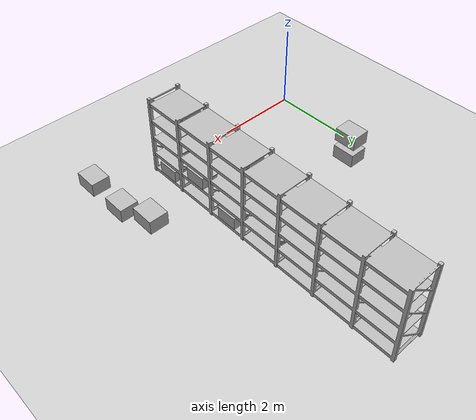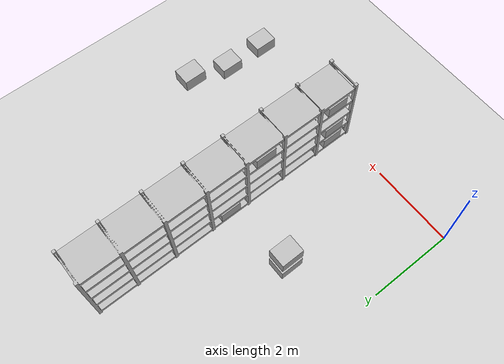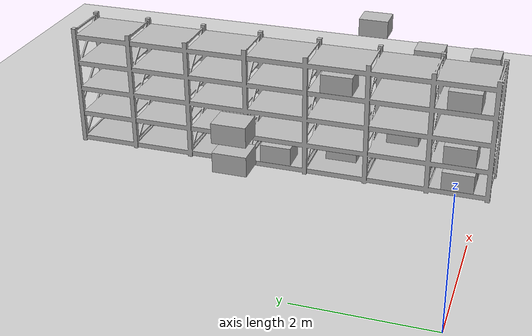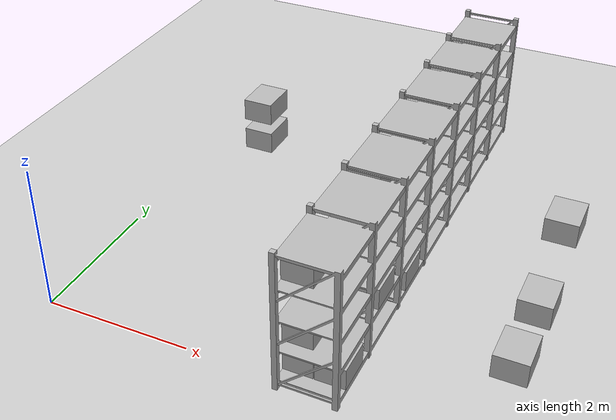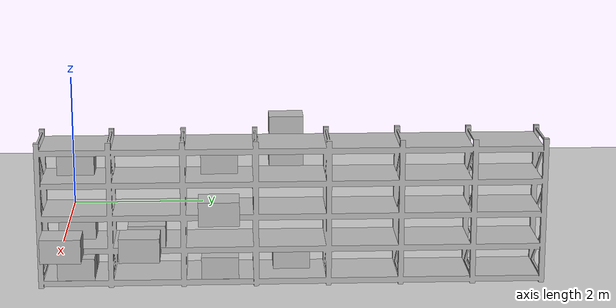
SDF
<sdf version="1.6">
 <world name="default">
  <model name="ground_plane">
   <static>1</static>
   <link name="link">
    <collision name="collision">
     <geometry><plane><normal>0 0 1</normal><size>100 100</size></plane></geometry>
     <surface><friction><ode><mu>100</mu><mu2>50</mu2></ode></friction></surface>
    </collision>
    <visual name="visual">
     <cast_shadows>0</cast_shadows>
     <geometry><plane><normal>0 0 1</normal><size>100 100</size></plane></geometry>
     <material>
      <script><uri>file://media/materials/scripts/gazebo.material</uri><name>Gazebo/Grey</name></script>
     </material>
    </visual>
   </link>
  </model>
  <model name="box_A_040">
   <pose>1.4649 3.2523 1.152 0 0 0</pose>
   <link name="link">
    <inertial>
     <mass>2.0</mass>
     <inertia><ixx>0.05667</ixx><iyy>0.04167</iyy><izz>0.06833</izz><ixy>0</ixy><ixz>0</ixz><iyz>0</iyz></inertia>
    </inertial>
    <collision name="collision">
     <geometry><box><size>0.4 0.5 0.3</size></box></geometry>
     <surface><friction><ode><mu>1.0</mu><mu2>1.0</mu2></ode></friction></surface>
    </collision>
    <visual name="visual">
     <cast_shadows>0</cast_shadows>
     <geometry><box><size>0.4 0.5 0.3</size></box></geometry>
     <material>
      <script>
       <uri>model://labeled_boxes/materials/scripts</uri>
       <uri>model://labeled_boxes/materials/textures</uri>
       <name>LabeledBox/A-040</name>
      </script>
     </material>
    </visual>
   </link>
  </model>
  <model name="box_A_041">
   <pose>1.4649 3.2523 1.602 0 0 0</pose>
   <link name="link">
    <inertial>
     <mass>2.0</mass>
     <inertia><ixx>0.05667</ixx><iyy>0.04167</iyy><izz>0.06833</izz><ixy>0</ixy><ixz>0</ixz><iyz>0</iyz></inertia>
    </inertial>
    <collision name="collision">
     <geometry><box><size>0.4 0.5 0.3</size></box></geometry>
     <surface><friction><ode><mu>1.0</mu><mu2>1.0</mu2></ode></friction></surface>
    </collision>
    <visual name="visual">
     <cast_shadows>0</cast_shadows>
     <geometry><box><size>0.4 0.5 0.3</size></box></geometry>
     <material>
      <script>
       <uri>model://labeled_boxes/materials/scripts</uri>
       <uri>model://labeled_boxes/materials/textures</uri>
       <name>LabeledBox/A-041</name>
      </script>
     </material>
    </visual>
   </link>
  </model>
  <include>
   <name>rack_A3_1</name>
   <uri>model://warehouse_rack_5lvl_7bay</uri>
   <pose>3.6599 3.2523 0 0 0 0</pose>
  </include>
  <model name="box_A_064">
   <pose>3.4549 0.35551 0.252 0 0 0</pose>
   <link name="link">
    <inertial>
     <mass>2.0</mass>
     <inertia><ixx>0.05667</ixx><iyy>0.04167</iyy><izz>0.06833</izz><ixy>0</ixy><ixz>0</ixz><iyz>0</iyz></inertia>
    </inertial>
    <collision name="collision">
     <geometry><box><size>0.4 0.5 0.3</size></box></geometry>
     <surface><friction><ode><mu>1.0</mu><mu2>1.0</mu2></ode></friction></surface>
    </collision>
    <visual name="visual">
     <cast_shadows>0</cast_shadows>
     <geometry><box><size>0.4 0.5 0.3</size></box></geometry>
     <material>
      <script>
       <uri>model://labeled_boxes/materials/scripts</uri>
       <uri>model://labeled_boxes/materials/textures</uri>
       <name>LabeledBox/A-064</name>
      </script>
     </material>
    </visual>
   </link>
  </model>
  <model name="box_A_065">
   <pose>3.8649 0.35551 0.252 0 0 0</pose>
   <link name="link">
    <inertial>
     <mass>2.0</mass>
     <inertia><ixx>0.05667</ixx><iyy>0.04167</iyy><izz>0.06833</izz><ixy>0</ixy><ixz>0</ixz><iyz>0</iyz></inertia>
    </inertial>
    <collision name="collision">
     <geometry><box><size>0.4 0.5 0.3</size></box></geometry>
     <surface><friction><ode><mu>1.0</mu><mu2>1.0</mu2></ode></friction></surface>
    </collision>
    <visual name="visual">
     <cast_shadows>0</cast_shadows>
     <geometry><box><size>0.4 0.5 0.3</size></box></geometry>
     <material>
      <script>
       <uri>model://labeled_boxes/materials/scripts</uri>
       <uri>model://labeled_boxes/materials/textures</uri>
       <name>LabeledBox/A-065</name>
      </script>
     </material>
    </visual>
   </link>
  </model>
  <model name="box_A_066">
   <pose>3.4549 0.35551 0.702 0 0 0</pose>
   <link name="link">
    <inertial>
     <mass>2.0</mass>
     <inertia><ixx>0.05667</ixx><iyy>0.04167</iyy><izz>0.06833</izz><ixy>0</ixy><ixz>0</ixz><iyz>0</iyz></inertia>
    </inertial>
    <collision name="collision">
     <geometry><box><size>0.4 0.5 0.3</size></box></geometry>
     <surface><friction><ode><mu>1.0</mu><mu2>1.0</mu2></ode></friction></surface>
    </collision>
    <visual name="visual">
     <cast_shadows>0</cast_shadows>
     <geometry><box><size>0.4 0.5 0.3</size></box></geometry>
     <material>
      <script>
       <uri>model://labeled_boxes/materials/scripts</uri>
       <uri>model://labeled_boxes/materials/textures</uri>
       <name>LabeledBox/A-066</name>
      </script>
     </material>
    </visual>
   </link>
  </model>
  <model name="box_A_067">
   <pose>3.4549 0.35551 1.602 0 0 0</pose>
   <link name="link">
    <inertial>
     <mass>2.0</mass>
     <inertia><ixx>0.05667</ixx><iyy>0.04167</iyy><izz>0.06833</izz><ixy>0</ixy><ixz>0</ixz><iyz>0</iyz></inertia>
    </inertial>
    <collision name="collision">
     <geometry><box><size>0.4 0.5 0.3</size></box></geometry>
     <surface><friction><ode><mu>1.0</mu><mu2>1.0</mu2></ode></friction></surface>
    </collision>
    <visual name="visual">
     <cast_shadows>0</cast_shadows>
     <geometry><box><size>0.4 0.5 0.3</size></box></geometry>
     <material>
      <script>
       <uri>model://labeled_boxes/materials/scripts</uri>
       <uri>model://labeled_boxes/materials/textures</uri>
       <name>LabeledBox/A-067</name>
      </script>
     </material>
    </visual>
   </link>
  </model>
  <model name="box_A_068">
   <pose>3.8649 1.3094 0.702 0 0 0</pose>
   <link name="link">
    <inertial>
     <mass>2.0</mass>
     <inertia><ixx>0.05667</ixx><iyy>0.04167</iyy><izz>0.06833</izz><ixy>0</ixy><ixz>0</ixz><iyz>0</iyz></inertia>
    </inertial>
    <collision name="collision">
     <geometry><box><size>0.4 0.5 0.3</size></box></geometry>
     <surface><friction><ode><mu>1.0</mu><mu2>1.0</mu2></ode></friction></surface>
    </collision>
    <visual name="visual">
     <cast_shadows>0</cast_shadows>
     <geometry><box><size>0.4 0.5 0.3</size></box></geometry>
     <material>
      <script>
       <uri>model://labeled_boxes/materials/scripts</uri>
       <uri>model://labeled_boxes/materials/textures</uri>
       <name>LabeledBox/A-068</name>
      </script>
     </material>
    </visual>
   </link>
  </model>
  <model name="box_A_069">
   <pose>3.8649 2.2809 0.252 0 0 0</pose>
   <link name="link">
    <inertial>
     <mass>2.0</mass>
     <inertia><ixx>0.05667</ixx><iyy>0.04167</iyy><izz>0.06833</izz><ixy>0</ixy><ixz>0</ixz><iyz>0</iyz></inertia>
    </inertial>
    <collision name="collision">
     <geometry><box><size>0.4 0.5 0.3</size></box></geometry>
     <surface><friction><ode><mu>1.0</mu><mu2>1.0</mu2></ode></friction></surface>
    </collision>
    <visual name="visual">
     <cast_shadows>0</cast_shadows>
     <geometry><box><size>0.4 0.5 0.3</size></box></geometry>
     <material>
      <script>
       <uri>model://labeled_boxes/materials/scripts</uri>
       <uri>model://labeled_boxes/materials/textures</uri>
       <name>LabeledBox/A-069</name>
      </script>
     </material>
    </visual>
   </link>
  </model>
  <model name="box_A_070">
   <pose>3.4549 2.2809 1.602 0 0 0</pose>
   <link name="link">
    <inertial>
     <mass>2.0</mass>
     <inertia><ixx>0.05667</ixx><iyy>0.04167</iyy><izz>0.06833</izz><ixy>0</ixy><ixz>0</ixz><iyz>0</iyz></inertia>
    </inertial>
    <collision name="collision">
     <geometry><box><size>0.4 0.5 0.3</size></box></geometry>
     <surface><friction><ode><mu>1.0</mu><mu2>1.0</mu2></ode></friction></surface>
    </collision>
    <visual name="visual">
     <cast_shadows>0</cast_shadows>
     <geometry><box><size>0.4 0.5 0.3</size></box></geometry>
     <material>
      <script>
       <uri>model://labeled_boxes/materials/scripts</uri>
       <uri>model://labeled_boxes/materials/textures</uri>
       <name>LabeledBox/A-070</name>
      </script>
     </material>
    </visual>
   </link>
  </model>
  <model name="box_A_071">
   <pose>3.4549 3.2523 0.252 0 0 0</pose>
   <link name="link">
    <inertial>
     <mass>2.0</mass>
     <inertia><ixx>0.05667</ixx><iyy>0.04167</iyy><izz>0.06833</izz><ixy>0</ixy><ixz>0</ixz><iyz>0</iyz></inertia>
    </inertial>
    <collision name="collision">
     <geometry><box><size>0.4 0.5 0.3</size></box></geometry>
     <surface><friction><ode><mu>1.0</mu><mu2>1.0</mu2></ode></friction></surface>
    </collision>
    <visual name="visual">
     <cast_shadows>0</cast_shadows>
     <geometry><box><size>0.4 0.5 0.3</size></box></geometry>
     <material>
      <script>
       <uri>model://labeled_boxes/materials/scripts</uri>
       <uri>model://labeled_boxes/materials/textures</uri>
       <name>LabeledBox/A-071</name>
      </script>
     </material>
    </visual>
   </link>
  </model>
  <model name="box_A_090">
   <pose>5.8549 0.35551 1.152 0 0 0</pose>
   <link name="link">
    <inertial>
     <mass>2.0</mass>
     <inertia><ixx>0.05667</ixx><iyy>0.04167</iyy><izz>0.06833</izz><ixy>0</ixy><ixz>0</ixz><iyz>0</iyz></inertia>
    </inertial>
    <collision name="collision">
     <geometry><box><size>0.4 0.5 0.3</size></box></geometry>
     <surface><friction><ode><mu>1.0</mu><mu2>1.0</mu2></ode></friction></surface>
    </collision>
    <visual name="visual">
     <cast_shadows>0</cast_shadows>
     <geometry><box><size>0.4 0.5 0.3</size></box></geometry>
     <material>
      <script>
       <uri>model://labeled_boxes/materials/scripts</uri>
       <uri>model://labeled_boxes/materials/textures</uri>
       <name>LabeledBox/A-090</name>
      </script>
     </material>
    </visual>
   </link>
  </model>
  <model name="box_A_094">
   <pose>5.8549 1.3094 1.152 0 0 0</pose>
   <link name="link">
    <inertial>
     <mass>2.0</mass>
     <inertia><ixx>0.05667</ixx><iyy>0.04167</iyy><izz>0.06833</izz><ixy>0</ixy><ixz>0</ixz><iyz>0</iyz></inertia>
    </inertial>
    <collision name="collision">
     <geometry><box><size>0.4 0.5 0.3</size></box></geometry>
     <surface><friction><ode><mu>1.0</mu><mu2>1.0</mu2></ode></friction></surface>
    </collision>
    <visual name="visual">
     <cast_shadows>0</cast_shadows>
     <geometry><box><size>0.4 0.5 0.3</size></box></geometry>
     <material>
      <script>
       <uri>model://labeled_boxes/materials/scripts</uri>
       <uri>model://labeled_boxes/materials/textures</uri>
       <name>LabeledBox/A-094</name>
      </script>
     </material>
    </visual>
   </link>
  </model>
  <model name="box_A_097">
   <pose>5.8549 2.2809 1.602 0 0 0</pose>
   <link name="link">
    <inertial>
     <mass>2.0</mass>
     <inertia><ixx>0.05667</ixx><iyy>0.04167</iyy><izz>0.06833</izz><ixy>0</ixy><ixz>0</ixz><iyz>0</iyz></inertia>
    </inertial>
    <collision name="collision">
     <geometry><box><size>0.4 0.5 0.3</size></box></geometry>
     <surface><friction><ode><mu>1.0</mu><mu2>1.0</mu2></ode></friction></surface>
    </collision>
    <visual name="visual">
     <cast_shadows>0</cast_shadows>
     <geometry><box><size>0.4 0.5 0.3</size></box></geometry>
     <material>
      <script>
       <uri>model://labeled_boxes/materials/scripts</uri>
       <uri>model://labeled_boxes/materials/textures</uri>
       <name>LabeledBox/A-097</name>
      </script>
     </material>
    </visual>
   </link>
  </model>
 </world>
</sdf>
